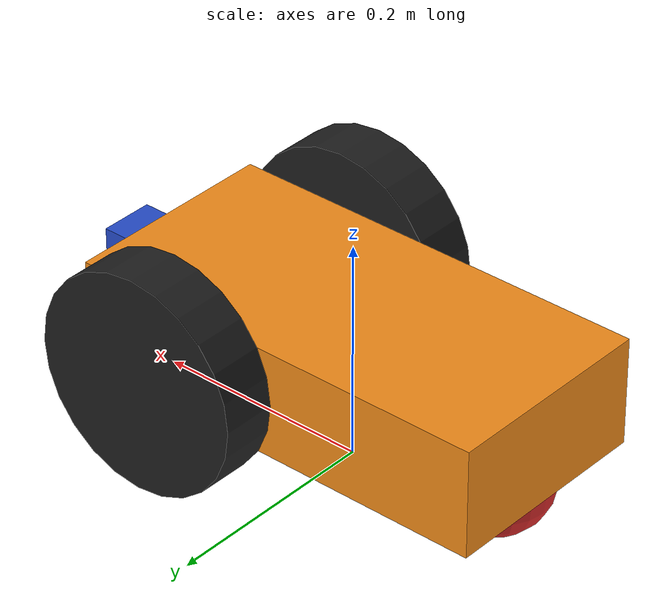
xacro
<?xml version="1.0"?>
<robot name="mybot"
    xmlns:xacro="http://www.ros.org/wiki/xacro">

	<xacro:property name="PI" value="3.1415926535897931" />

    <xacro:property name="chassisLength" value="0.4" />
	<xacro:property name="chassisWidth" value="0.2" />
	<xacro:property name="chassisHeight" value="0.1" />
	<xacro:property name="chassisMass" value="50" />

	<xacro:property name="wheelWidth" value="0.05" />
	<xacro:property name="wheelRadius" value="0.1" />
    <xacro:property name="wheelPos" value="${chassisLength / 2 - wheelRadius}" />
	<xacro:property name="wheelMass" value="5" />

    <xacro:property name="casterRadius" value="${wheelRadius - chassisHeight / 2}" />
	<xacro:property name="casterMass" value="1" />

	<xacro:property name="cameraSize" value="0.05" />
	<xacro:property name="cameraMass" value="0.1" />

	<xacro:include filename="$(find mybot_description)/urdf/mybot.gazebo" />
	<xacro:include filename="$(find mybot_description)/urdf/macros.xacro" />

	<link name="footprint" />

	<link name='base_link'>
		<collision>
			<geometry>
				<box size="${chassisLength} ${chassisWidth} ${chassisHeight}" />
			</geometry>
		</collision>
		<visual>
			<geometry>
				<box size="${chassisLength} ${chassisWidth} ${chassisHeight}" />
			</geometry>
			<material name="orange"/>
		</visual>
		<inertial>
			<mass value="${chassisMass}" />
			<xacro:box_inertia m="${chassisMass}" x="${chassisLength}" y="${chassisWidth}" z="${chassisHeight}" />
		</inertial>
	</link>

	<link name="caster_wheel">
		<collision>
			<geometry>
				<sphere radius="${casterRadius}" />
			</geometry>
		</collision>

		<visual>
			<geometry>
				<sphere radius="${casterRadius}" />
			</geometry>
			<material name="red" />
		</visual>

		<inertial>
			<mass value="${casterMass}" />
			<xacro:sphere_inertia m="${casterMass}" r="${casterRadius}" />
		</inertial>
	</link>

	<xacro:wheel lr="left" tY="1" />
	<xacro:wheel lr="right" tY="-1" />

	<link name="camera">
		<collision>
			<geometry>
				<box size="${cameraSize} ${cameraSize} ${cameraSize}" />
			</geometry>
		</collision>

		<visual>
			<geometry>
				<box size="${cameraSize} ${cameraSize} ${cameraSize}" />
			</geometry>
			<material name="blue"/>
		</visual>

		<inertial>
			<mass value="${cameraMass}" />
			<xacro:box_inertia m="${cameraMass}" x="${cameraSize}" y="${cameraSize}" z="${cameraSize}" />
		</inertial>
	</link>

	<joint name="base_joint" type="fixed">
		<parent link="footprint" />
		<child link="base_link" />
        <origin xyz="0 0 ${wheelRadius}" />
	</joint>

	<joint name="caster_joint" type="fixed">
		<parent link="base_link" />
		<child link="caster_wheel" />
        <origin xyz="${casterRadius - chassisLength/2} 0 ${-chassisHeight / 2}" />
	</joint>

	<joint name="camera_joint" type="fixed">
		<parent link="base_link" />
		<child link="camera" />
        <origin xyz="${chassisLength / 2 + cameraSize / 2} 0 0" />
	</joint>

</robot>

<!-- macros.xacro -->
<robot name="mybot"
    xmlns:xacro="http://www.ros.org/wiki/xacro">

	<xacro:macro name="cylinder_inertia" params="m r h">
		<inertia  ixx="${m*(3*r*r+h*h)/12}" ixy = "0" ixz = "0"
				iyy="${m*(3*r*r+h*h)/12}" iyz = "0"
				izz="${m*r*r/2}"
			/>
	</xacro:macro>

	<xacro:macro name="box_inertia" params="m x y z">
		<inertia  ixx="${m*(y*y+z*z)/12}" ixy = "0" ixz = "0"
				iyy="${m*(x*x+z*z)/12}" iyz = "0"
				izz="${m*(x*x+z*z)/12}"
			/>
	</xacro:macro>

	<xacro:macro name="sphere_inertia" params="m r">
		<inertia  ixx="${2*m*r*r/5}" ixy = "0" ixz = "0"
				iyy="${2*m*r*r/5}" iyz = "0"
				izz="${2*m*r*r/5}"
			/>
	</xacro:macro>

	<xacro:macro name="wheel" params="lr tY">
		<link name="${lr}_wheel">
			<collision>
				<origin xyz="0 0 0" rpy="0 0 0" />
				<geometry>
					<cylinder length="${wheelWidth}" radius="${wheelRadius}"/>
				</geometry>
			</collision>

			<visual>
				<origin xyz="0 0 0" rpy="0 0 0" />
				<geometry>
					<cylinder length="${wheelWidth}" radius="${wheelRadius}"/>
				</geometry>
				<material name="black"/>
			</visual>

			<inertial>
				<origin xyz="0 0 0" rpy="0 0 0" />
				<mass value="${wheelMass}"/>
				<xacro:cylinder_inertia m="${wheelMass}" r="${wheelRadius}" h="${wheelWidth}"/>
			</inertial>
		</link>

		<gazebo reference="${lr}_wheel">
			<mu1 value="1.0"/>
			<mu2 value="1.0"/>
			<kp value="10000000.0" />
			<kd value="1.0" />
			<!-- fdir creates problem (wheels slip) -->
			<material>Gazebo/Black</material>
		</gazebo>

		<joint name="${lr}_wheel_hinge" type="continuous">
			<parent link="base_link"/>
			<child link="${lr}_wheel"/>
            <origin xyz="${wheelPos} ${tY*wheelWidth/2 + tY*chassisWidth/2} 0" rpy="${-PI/2} 0 0" />
			<axis xyz="0 0 1" rpy="0 0 0" />
			<limit effort="100" velocity="100"/>
			<joint_properties damping="0.0" friction="0.0"/>
		</joint>

		<transmission name="${lr}_trans" type="SimpleTransmission">
			<type>transmission_interface/SimpleTransmission</type>
			<actuator name="${lr}Motor">
				<hardwareInterface>EffortJointInterface</hardwareInterface>
				<mechanicalReduction>10</mechanicalReduction>
			</actuator>
			<joint name="${lr}_wheel_hinge">
				<hardwareInterface>EffortJointInterface</hardwareInterface>
			</joint>
			<mechanicalReduction>1</mechanicalReduction>
			<motorTorqueConstant>1</motorTorqueConstant>
		</transmission>
	</xacro:macro>

</robot>
